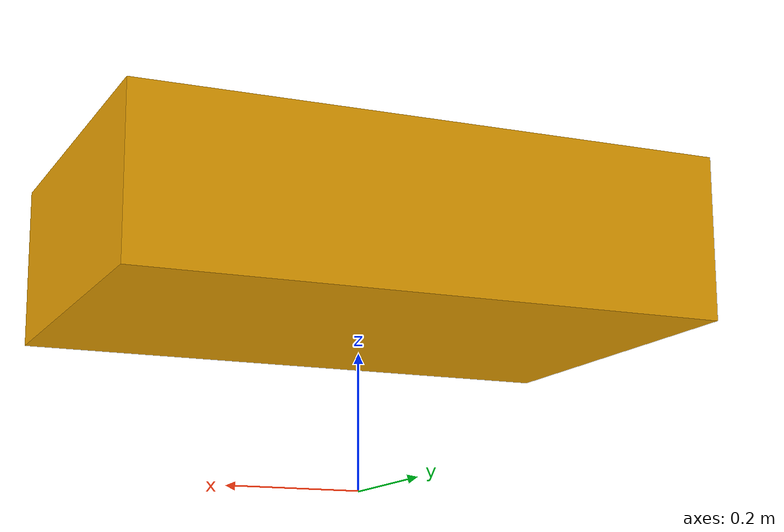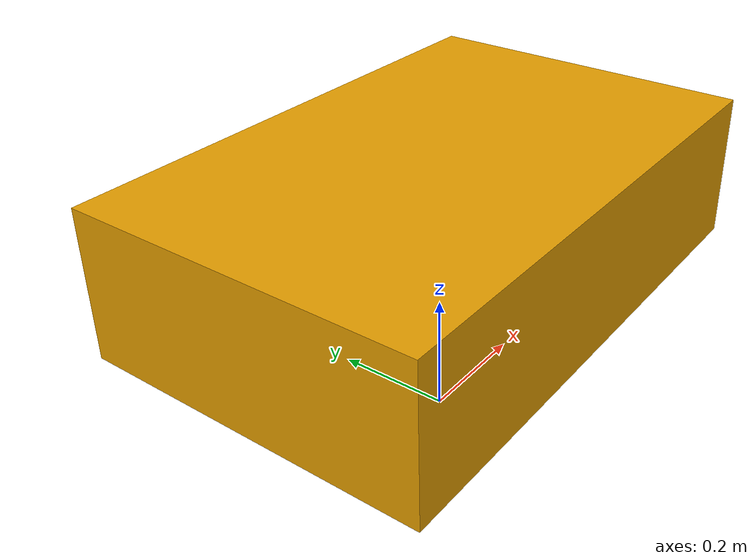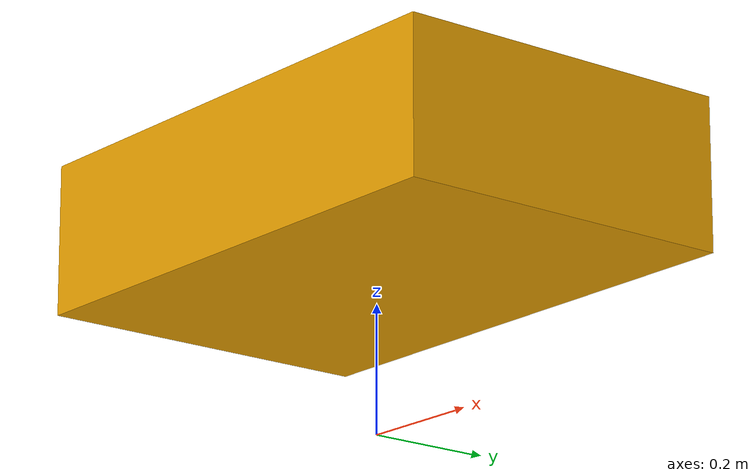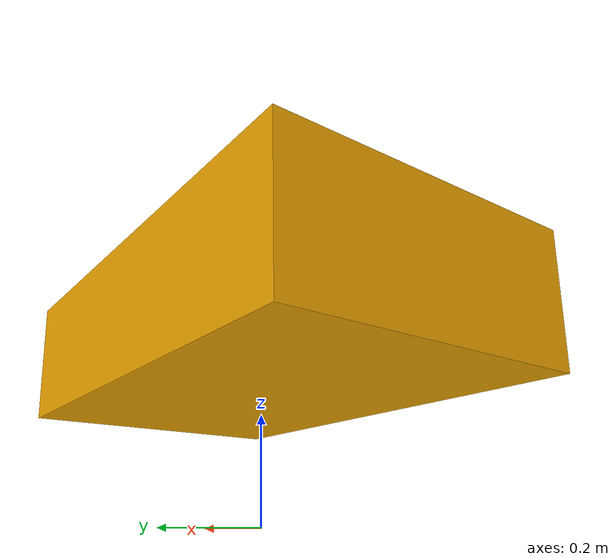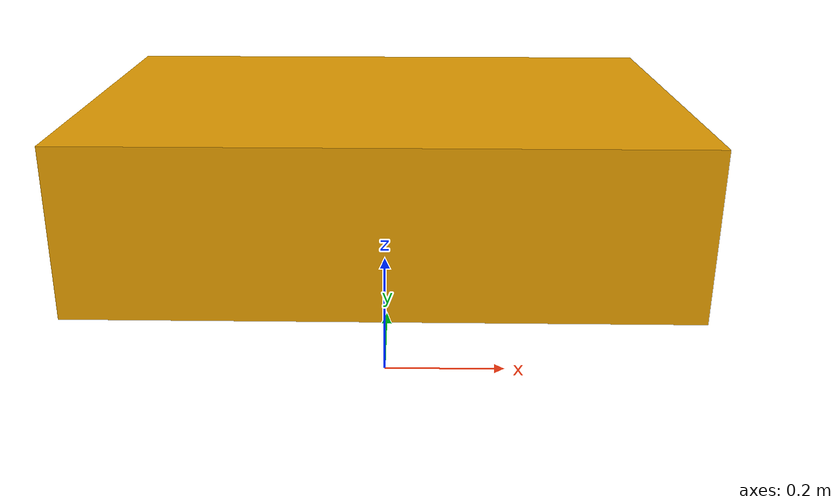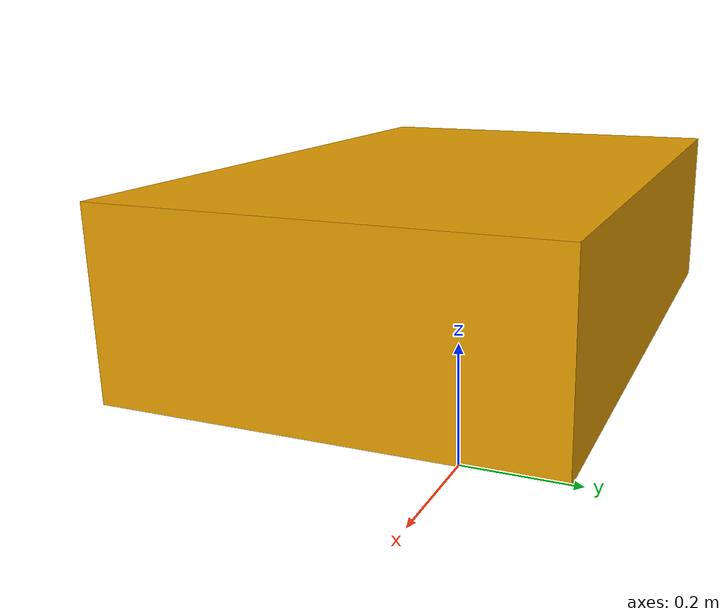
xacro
<?xml version='1.0'?>
<robot xmlns:xacro='http://www.ros.org/wiki/xacro' name='garden_tracked_improved'>
  <xacro:property name='variant' value='tracked_improved'/>
  <xacro:property name='mass_kg' value='65.0'/>
  <xacro:property name='track_gauge' value='0.7'/>
  <xacro:property name='wheel_radius' value='0.18'/>
  <xacro:property name='body_clearance' value='0.25'/>
  <link name='base_link'>
    <visual name='TRK2-BASE-001_visual'><origin xyz='0 0 0.35' rpy='0 0 0'/><geometry><box size='0.86 0.56 0.24'/></geometry></visual>
    <collision name='TRK2-BASE-001_collision'><origin xyz='0 0 0.35' rpy='0 0 0'/><geometry><box size='0.78 0.48 0.2'/></geometry></collision>
    <inertial><origin xyz='0 0 0.34' rpy='0 0 0'/><mass value='52.6'/><inertia ixx='1.6270933333333335' ixy='0' ixz='0' iyy='3.494393333333333' iyz='0' izz='4.616526666666666'/></inertial>
  </link>
  <link name='left_wheel'><collision name='left_wheel_collision'><geometry><cylinder radius='0.18' length='0.13'/></geometry></collision></link>
  <joint name='left_joint' type='continuous'><parent link='base_link'/><child link='left_wheel'/><origin xyz='0.16 0.35 0.18' rpy='1.57079632679 0 0'/><axis xyz='0 0 -1'/></joint>
  <link name='right_wheel'><collision name='right_wheel_collision'><geometry><cylinder radius='0.18' length='0.13'/></geometry></collision></link>
  <joint name='right_joint' type='continuous'><parent link='base_link'/><child link='right_wheel'/><origin xyz='0.16 -0.35 0.18' rpy='1.57079632679 0 0'/><axis xyz='0 0 -1'/></joint>
  <!-- Future CAD references: TRK2-BASE-001, TRK2-BELT-VIS-001, TRK2-REAR-SKID-001. Visual and collision geometry remain separate. -->
</robot>
